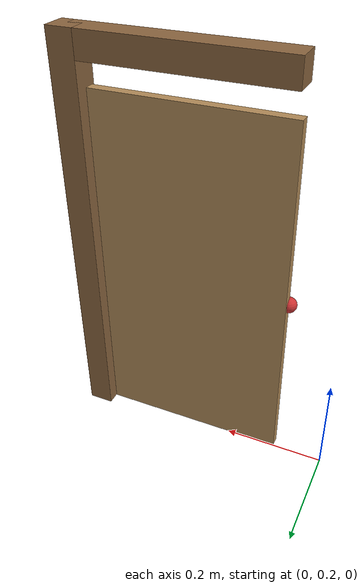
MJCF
<mujoco model="door">

  <!-- Exclude self-collision between the door frame and door panel bodies.
       They are joined by the hinge and must not push each other. -->
  <contact>
    <exclude body1="door_frame" body2="door_panel"/>
  </contact>

  <worldbody>
    <!-- Fixed door frame (static geometry, no joint) -->
    <body name="door_frame" pos="0.5 0.2 0.4">
      <!-- Vertical hinge-side post -->
      <geom name="door_frame_hinge_post" type="box" size="0.025 0.025 0.4"
            pos="0.0 0.0 0.0"
            mass="5.0" rgba="0.55 0.40 0.25 1" condim="1" friction="0.5 0.005 0.0001"/>
      <!-- Top horizontal beam -->
      <geom name="door_frame_top_beam" type="box" size="0.2 0.025 0.025"
            pos="-0.2 0.0 0.375"
            mass="1.0" rgba="0.55 0.40 0.25 1" condim="1" friction="0.5 0.005 0.0001"/>
    </body>

    <!-- Door panel body — attached to the world at the hinge position -->
    <body name="door_panel" pos="0.5 0.2 0.0">
      <!-- Hinge joint: rotation about Z-axis.  Positive angle opens the door
           (panel swings toward the robot, i.e. increasing y). -->
      <joint name="door_hinge" type="hinge" axis="0 0 1"
             pos="0 0 0.35"
             range="-0.1 1.57"
             stiffness="1.0" damping="2.0" frictionloss="2.5"/>
      <!-- Door panel geom: extends from hinge edge (y=0.2) outward in -y direction -->
      <geom name="door_panel_geom" type="box" size="0.2 0.01 0.35"
            pos="-0.2 -0.01 0.35"
            mass="0.8" rgba="0.70 0.55 0.35 1"
            condim="4" friction="0.5 0.005 0.0001"/>
      <!-- Door handle site: at the free edge of the panel, mid-height.
           In body frame: x=-0.4 (far from hinge), y=-0.02 (panel face), z=0.35 (mid). -->
      <site name="door_handle" pos="-0.4 -0.02 0.35" size="0.015" rgba="0.8 0.2 0.2 0.9"/>
    </body>
    <!-- Multi-angle cameras for door_pull -->
    <camera name="overview" pos="0.0 -1.4 1.5" euler="55 0 0"/>
    <camera name="side" pos="-1.5 0.2 0.9" euler="0 -70 0"/>
    <camera name="top_down" pos="0.0 0.1 2.2" euler="90 0 0"/>
    <!-- Wrist camera approximates TCP view (static until MJCF body-attachment upgrade). -->
    <camera name="wrist" mode="fixed" pos="0.45 0.2 0.45" euler="90 0 180"/>
  </worldbody>
</mujoco>
